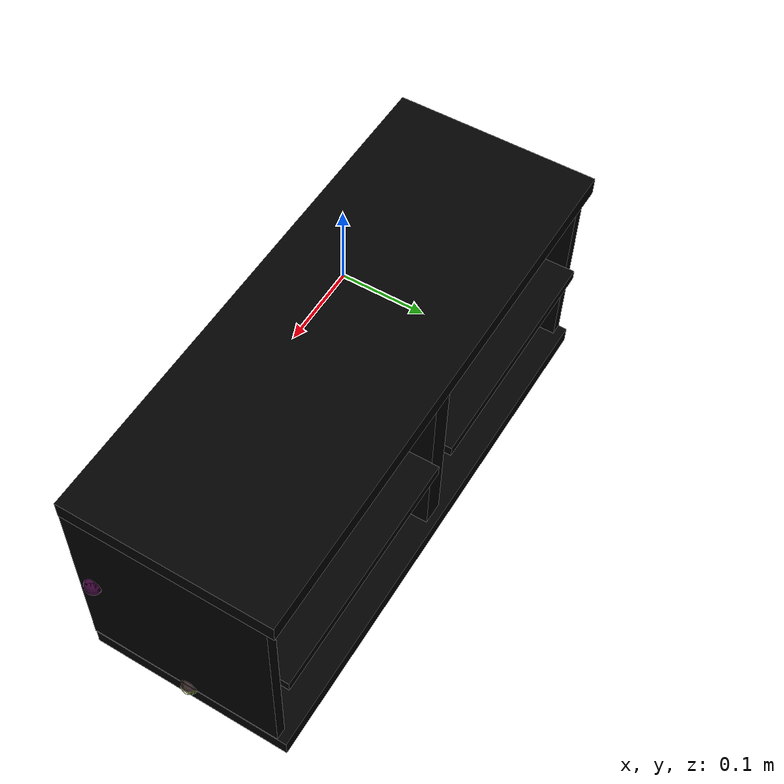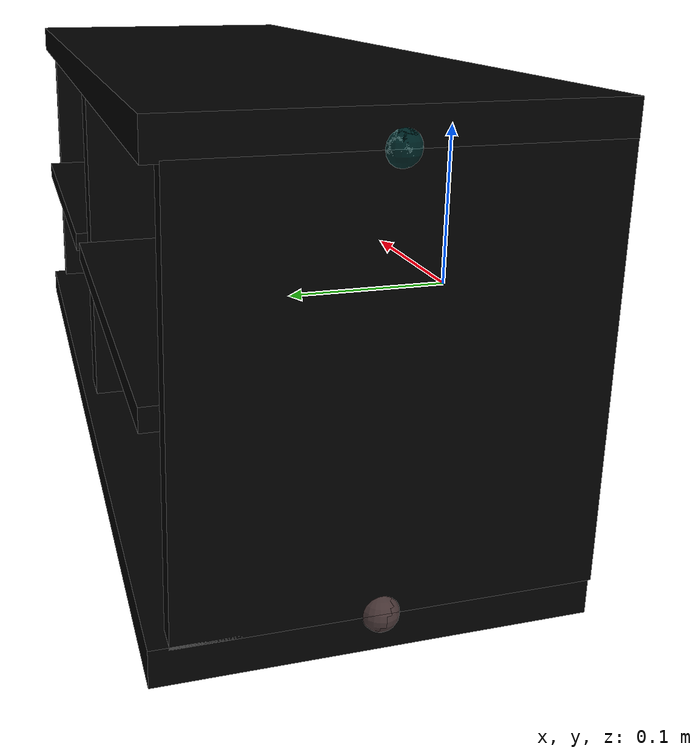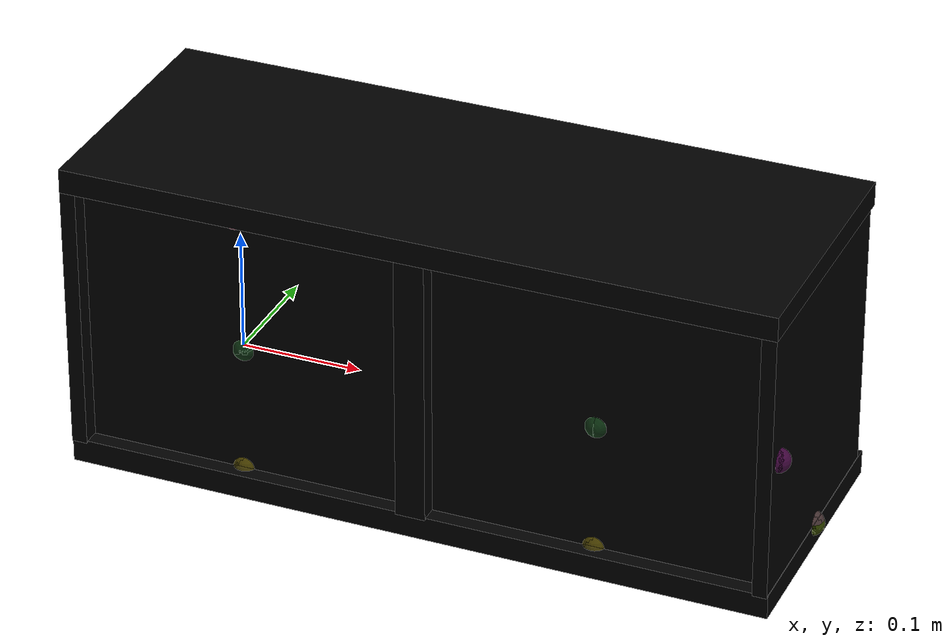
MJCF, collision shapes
<mujoco model="bookcase_besta_0170">
  <custom>
    <numeric data="-0.070591 0.012523 0.00199 0.706958 -0.706958 0.014498 -0.014498" name="0_part0_initpos" />
    <numeric data="-0.080256 -0.258595 0.00632 0.0 -0.999986 0.005202 0.0" name="8_part8_initpos" />
    <numeric data="0.274967 -0.272335 0.00632 0.0 -0.999928 -0.012017 0.0" name="7_part7_initpos" />
    <numeric data="0.259821 0.02173 0.00584 0.707029 -0.010492 0.707029 0.010492" name="6_part6_initpos" />
    <numeric data="-0.404145 0.315825 0.00632 0.706995 -0.012561 -0.706995 -0.012561" name="5_part5_initpos" />
    <numeric data="-0.40188 -0.275617 0.01267 0.5 -0.5 -0.5 -0.5" name="4_part4_initpos" />
    <numeric data="0.078748 0.33359 0.01024 0.999926 -0.0 -0.0 -0.012148" name="3_part3_initpos" />
    <numeric data="0.571399 0.008153 0.01025 -0.0 -0.696823 -0.717243 0.0" name="2_part2_initpos" />
    <numeric data="-0.424892 0.026808 0.00199 0.707105 -0.707105 0.001613 -0.001613" name="1_part1_initpos" />
  </custom>
  <asset>
    <mesh file="bookcase_besta_0170/0.stl" name="part0" scale="0.0005 0.0005 0.0005" />
    <mesh file="bookcase_besta_0170/8.stl" name="part8" scale="0.0005 0.0005 0.0005" />
    <mesh file="bookcase_besta_0170/7.stl" name="part7" scale="0.0005 0.0005 0.0005" />
    <mesh file="bookcase_besta_0170/6.stl" name="part6" scale="0.0005 0.0005 0.0005" />
    <mesh file="bookcase_besta_0170/5.stl" name="part5" scale="0.0005 0.0005 0.0005" />
    <mesh file="bookcase_besta_0170/4.stl" name="part4" scale="0.0005 0.0005 0.0005" />
    <mesh file="bookcase_besta_0170/3.stl" name="part3" scale="0.0005 0.0005 0.0005" />
    <mesh file="bookcase_besta_0170/2.stl" name="part2" scale="0.0005 0.0005 0.0005" />
    <mesh file="bookcase_besta_0170/1.stl" name="part1" scale="0.0005 0.0005 0.0005" />
  </asset>
  <equality>
    <weld active="false" body1="0_part0" body2="2_part2" solimp="1 1 0.5" solref="0.01 0.3" />
    <weld active="false" body1="8_part8" body2="6_part6" solimp="1 1 0.5" solref="0.01 0.3" />
    <weld active="false" body1="8_part8" body2="4_part4" solimp="1 1 0.5" solref="0.01 0.3" />
    <weld active="false" body1="7_part7" body2="4_part4" solimp="1 1 0.5" solref="0.01 0.3" />
    <weld active="false" body1="7_part7" body2="5_part5" solimp="1 1 0.5" solref="0.01 0.3" />
    <weld active="false" body1="6_part6" body2="1_part1" solimp="1 1 0.5" solref="0.01 0.3" />
    <weld active="false" body1="6_part6" body2="3_part3" solimp="1 1 0.5" solref="0.01 0.3" />
    <weld active="false" body1="5_part5" body2="2_part2" solimp="1 1 0.5" solref="0.01 0.3" />
    <weld active="false" body1="5_part5" body2="3_part3" solimp="1 1 0.5" solref="0.01 0.3" />
    <weld active="false" body1="4_part4" body2="2_part2" solimp="1 1 0.5" solref="0.01 0.3" />
    <weld active="false" body1="4_part4" body2="3_part3" solimp="1 1 0.5" solref="0.01 0.3" />
    <weld active="false" body1="2_part2" body2="1_part1" solimp="1 1 0.5" solref="0.01 0.3" />
  </equality>
  <worldbody>
    <body name="0_part0" pos="2e-10 5e-11 0.0" quat="1 0 0 0">
      <geom conaffinity="0" contype="0" density="0" mesh="part0" name="0_part0_mesh" pos="0.0 0.0 0.0" rgba="0.82 0.71 0.55 1" type="mesh" />
      <site name="0_part0_horizontal_radius_site" pos="2e-10 5e-11 0.0" quat="1 0 0 0" rgba="0 0 0 0" size="0.01" />
      <site name="0_part0_top_site" pos="1.5e-10 0.0 0.11430589295" quat="1 0 0 0" rgba="0 0 0 0" size="0.01" />
      <site name="0_part0_bottom_site" pos="1.5e-10 0.0 -0.11430589295" quat="1 0 0 0" rgba="0 0 0 0" size="0.01" />
      <site name="0_part0_corner_site8" pos="-0.13906500245 0.00202235395 0.11430589295" quat="1 0 0 0" rgba="0 0 0 0" size="0.01" />
      <site name="0_part0_corner_site7" pos="0.1390650028 0.00202235395 0.11430589295" quat="1 0 0 0" rgba="0 0 0 0" size="0.01" />
      <site name="0_part0_corner_site6" pos="0.1390650028 -0.0020223539 0.11430589295" quat="1 0 0 0" rgba="0 0 0 0" size="0.01" />
      <site name="0_part0_corner_site5" pos="-0.13906500245 -0.0020223539 0.11430589295" quat="1 0 0 0" rgba="0 0 0 0" size="0.01" />
      <site name="0_part0_corner_site4" pos="-0.13906500245 0.00202235395 -0.11430589295" quat="1 0 0 0" rgba="0 0 0 0" size="0.01" />
      <site name="0_part0_corner_site3" pos="0.1390650028 0.00202235395 -0.11430589295" quat="1 0 0 0" rgba="0 0 0 0" size="0.01" />
      <site name="0_part0_corner_site2" pos="0.1390650028 -0.0020223539 -0.11430589295" quat="1 0 0 0" rgba="0 0 0 0" size="0.01" />
      <site name="0_part0_corner_site1" pos="-0.13906500245 -0.0020223539 -0.11430589295" quat="1 0 0 0" rgba="0 0 0 0" size="0.01" />
      <site name="0_part0-2_part2,0,180,conn_site" pos="-0.0046500000000000005 0.00039999995 0.1142474" quat="1 0 0 0" rgba="0.9019 0.0980 0.2941 0.3" size="0.01" />
      <site name="back-shelf,0,180,conn_site1" pos="0.00017 0.00184 -0.00397" quat="0.7071067 0.7071068 0 0" rgba="0.2352 0.7058 0.2941 0.3" size="0.01" />
      <site name="back-floor,0,conn_site1" pos="-0.002 0.0014 -0.1137" quat="1 0 0 0" rgba="1.0 0.8823 0.0980 0.3" size="0.01" />
      <geom density="50" name="noviz_collision_0_part0_0" pos="0 0 0" quat="1 0 0 0" rgba="0 0 0 0" size="0.13906 0.00202 0.11431" solref="0.001 1" type="box" />
    </body>
    <body name="8_part8" pos="0.29879042535 0.1074300703 -0.0030907227000000004" quat="1 0 0 0">
      <geom conaffinity="0" contype="0" density="0" mesh="part8" name="8_part8_mesh" pos="0.0 0.0 0.0" rgba="0.82 0.71 0.55 1" type="mesh" />
      <site name="8_part8_horizontal_radius_site" pos="0.0 0.0 0.0" quat="1 0 0 0" rgba="0 0 0 0" size="0.01" />
      <site name="8_part8_top_site" pos="0.0 0.0 0.00635" quat="1 0 0 0" rgba="0 0 0 0" size="0.01" />
      <site name="8_part8_bottom_site" pos="0.0 0.0 -0.00635" quat="1 0 0 0" rgba="0 0 0 0" size="0.01" />
      <site name="8_part8_corner_site8" pos="-0.136525 0.10540771635 0.00635" quat="1 0 0 0" rgba="0 0 0 0" size="0.01" />
      <site name="8_part8_corner_site7" pos="0.136525 0.10540771635 0.00635" quat="1 0 0 0" rgba="0 0 0 0" size="0.01" />
      <site name="8_part8_corner_site6" pos="0.136525 -0.10540771635 0.00635" quat="1 0 0 0" rgba="0 0 0 0" size="0.01" />
      <site name="8_part8_corner_site5" pos="-0.136525 -0.10540771635 0.00635" quat="1 0 0 0" rgba="0 0 0 0" size="0.01" />
      <site name="8_part8_corner_site4" pos="-0.136525 0.10540771635 -0.00635" quat="1 0 0 0" rgba="0 0 0 0" size="0.01" />
      <site name="8_part8_corner_site3" pos="0.136525 0.10540771635 -0.00635" quat="1 0 0 0" rgba="0 0 0 0" size="0.01" />
      <site name="8_part8_corner_site2" pos="0.136525 -0.10540771635 -0.00635" quat="1 0 0 0" rgba="0 0 0 0" size="0.01" />
      <site name="8_part8_corner_site1" pos="-0.136525 -0.10540771635 -0.00635" quat="1 0 0 0" rgba="0 0 0 0" size="0.01" />
      <site name="8_part8-6_part6,0,180,conn_site" pos="0.13620955 -0.004821090500000001 -0.001259277" quat="1 0 0 0" rgba="0.2627 0.3882 0.8470 0.3" size="0.01" />
      <site name="8_part8-4_part4,0,180,conn_site" pos="-0.13739045 -0.004821090500000001 -0.0030592774999999997" quat="1 0 0 0" rgba="0.9607 0.5098 0.1921 0.3" size="0.01" />
      <site name="shelf-back,0,180,conn_site2" pos="0.00034 -0.10559 -0.00088" quat="0.7071067 0.7071068 0 0" rgba="0.2352 0.7058 0.2941 0.3" size="0.01" />
      <geom density="50" name="noviz_collision_8_part8_0" pos="0 0 0" quat="1 0 0 0" rgba="0 0 0 0" size="0.13653 0.10541 0.00635" solref="0.001 1" type="box" />
    </body>
    <body name="7_part7" pos="0.00034042535 0.1074300703 -0.0030907227000000004" quat="1 0 0 0">
      <geom conaffinity="0" contype="0" density="0" mesh="part7" name="7_part7_mesh" pos="0.0 0.0 0.0" rgba="0.82 0.71 0.55 1" type="mesh" />
      <site name="7_part7_horizontal_radius_site" pos="0.0 0.0 0.0" quat="1 0 0 0" rgba="0 0 0 0" size="0.01" />
      <site name="7_part7_top_site" pos="0.0 0.0 0.00635" quat="1 0 0 0" rgba="0 0 0 0" size="0.01" />
      <site name="7_part7_bottom_site" pos="0.0 0.0 -0.00635" quat="1 0 0 0" rgba="0 0 0 0" size="0.01" />
      <site name="7_part7_corner_site8" pos="-0.136525 0.10540771635 0.00635" quat="1 0 0 0" rgba="0 0 0 0" size="0.01" />
      <site name="7_part7_corner_site7" pos="0.136525 0.10540771635 0.00635" quat="1 0 0 0" rgba="0 0 0 0" size="0.01" />
      <site name="7_part7_corner_site6" pos="0.136525 -0.10540771635 0.00635" quat="1 0 0 0" rgba="0 0 0 0" size="0.01" />
      <site name="7_part7_corner_site5" pos="-0.136525 -0.10540771635 0.00635" quat="1 0 0 0" rgba="0 0 0 0" size="0.01" />
      <site name="7_part7_corner_site4" pos="-0.136525 0.10540771635 -0.00635" quat="1 0 0 0" rgba="0 0 0 0" size="0.01" />
      <site name="7_part7_corner_site3" pos="0.136525 0.10540771635 -0.00635" quat="1 0 0 0" rgba="0 0 0 0" size="0.01" />
      <site name="7_part7_corner_site2" pos="0.136525 -0.10540771635 -0.00635" quat="1 0 0 0" rgba="0 0 0 0" size="0.01" />
      <site name="7_part7_corner_site1" pos="-0.136525 -0.10540771635 -0.00635" quat="1 0 0 0" rgba="0 0 0 0" size="0.01" />
      <site name="7_part7-4_part4,0,180,conn_site" pos="0.13615960000000002 -0.004821090500000001 -0.001109277" quat="1 0 0 0" rgba="0.5686 0.1176 0.7058 0.3" size="0.01" />
      <site name="7_part7-5_part5,0,180,conn_site" pos="-0.1360404 -0.004821090500000001 -0.0024592775" quat="1 0 0 0" rgba="0.2745 0.9411 0.9411 0.3" size="0.01" />
      <site name="shelf-back,0,180,conn_site1" pos="-0.00017 -0.10559 -0.00088" quat="0.7071067 0.7071068 0 0" rgba="0.2352 0.7058 0.2941 0.3" size="0.01" />
      <geom density="50" name="noviz_collision_7_part7_0" pos="0 0 0" quat="1 0 0 0" rgba="0 0 0 0" size="0.13653 0.10541 0.00635" solref="0.001 1" type="box" />
    </body>
    <body name="6_part6" pos="0.44166542535000003 0.09778788215 0.00064371055" quat="1 0 0 0">
      <geom conaffinity="0" contype="0" density="0" mesh="part6" name="6_part6_mesh" pos="0.0 0.0 0.0" rgba="0.82 0.71 0.55 1" type="mesh" />
      <site name="6_part6_horizontal_radius_site" pos="0.0 6e-10 0.0" quat="1 0 0 0" rgba="0 0 0 0" size="0.01" />
      <site name="6_part6_top_site" pos="0.0 6e-10 0.11504990385000001" quat="1 0 0 0" rgba="0 0 0 0" size="0.01" />
      <site name="6_part6_bottom_site" pos="0.0 6e-10 -0.11504990385000001" quat="1 0 0 0" rgba="0 0 0 0" size="0.01" />
      <site name="6_part6_corner_site8" pos="-0.00635 0.11504990505000001 0.11504990385000001" quat="1 0 0 0" rgba="0 0 0 0" size="0.01" />
      <site name="6_part6_corner_site7" pos="0.00635 0.11504990505000001 0.11504990385000001" quat="1 0 0 0" rgba="0 0 0 0" size="0.01" />
      <site name="6_part6_corner_site6" pos="0.00635 -0.11504990385000001 0.11504990385000001" quat="1 0 0 0" rgba="0 0 0 0" size="0.01" />
      <site name="6_part6_corner_site5" pos="-0.00635 -0.11504990385000001 0.11504990385000001" quat="1 0 0 0" rgba="0 0 0 0" size="0.01" />
      <site name="6_part6_corner_site4" pos="-0.00635 0.11504990505000001 -0.11504990385000001" quat="1 0 0 0" rgba="0 0 0 0" size="0.01" />
      <site name="6_part6_corner_site3" pos="0.00635 0.11504990505000001 -0.11504990385000001" quat="1 0 0 0" rgba="0 0 0 0" size="0.01" />
      <site name="6_part6_corner_site2" pos="0.00635 -0.11504990385000001 -0.11504990385000001" quat="1 0 0 0" rgba="0 0 0 0" size="0.01" />
      <site name="6_part6_corner_site1" pos="-0.00635 -0.11504990385000001 -0.11504990385000001" quat="1 0 0 0" rgba="0 0 0 0" size="0.01" />
      <site name="6_part6-1_part1,0,180,conn_site" pos="0.004984558 -0.0971379 5.014855e-05" quat="1 0 0 0" rgba="0.9411 0.1960 0.9019 0.3" size="0.01" />
      <site name="6_part6-8_part8,0,180,conn_site" pos="-0.006665435000000001 0.0048210985 -0.0049937105" quat="1 0 0 0" rgba="0.2627 0.3882 0.8470 0.3" size="0.01" />
      <site name="6_part6-3_part3,0,180,conn_site" pos="0.003584564 0.00040753935 -0.1150437" quat="1 0 0 0" rgba="0.7372 0.9647 0.0470 0.3" size="0.01" />
      <site name="wall-floor,0,180,conn_site2" pos="0.00331 0.00041 -0.1143" quat="1 0 0 0" rgba="0.9803 0.7450 0.7450 0.3" size="0.01" />
      <geom density="50" name="noviz_collision_6_part6_0" pos="-0.00024 -0.00491 -4E-05" quat="1 0 0 0" rgba="0 0 0 0" size="0.00611 0.11014 0.11501" solref="0.001 1" type="box" />
    </body>
    <body name="5_part5" pos="-0.1425345768 0.09778788215 0.00064371055" quat="1 0 0 0">
      <geom conaffinity="0" contype="0" density="0" mesh="part5" name="5_part5_mesh" pos="0.0 0.0 0.0" rgba="0.82 0.71 0.55 1" type="mesh" />
      <site name="5_part5_horizontal_radius_site" pos="0.0 6e-10 0.0" quat="1 0 0 0" rgba="0 0 0 0" size="0.01" />
      <site name="5_part5_top_site" pos="0.0 6e-10 0.11504990385000001" quat="1 0 0 0" rgba="0 0 0 0" size="0.01" />
      <site name="5_part5_bottom_site" pos="0.0 6e-10 -0.11504990385000001" quat="1 0 0 0" rgba="0 0 0 0" size="0.01" />
      <site name="5_part5_corner_site8" pos="-0.0063500061 0.11504990505000001 0.11504990385000001" quat="1 0 0 0" rgba="0 0 0 0" size="0.01" />
      <site name="5_part5_corner_site7" pos="0.0063500061 0.11504990505000001 0.11504990385000001" quat="1 0 0 0" rgba="0 0 0 0" size="0.01" />
      <site name="5_part5_corner_site6" pos="0.0063500061 -0.11504990385000001 0.11504990385000001" quat="1 0 0 0" rgba="0 0 0 0" size="0.01" />
      <site name="5_part5_corner_site5" pos="-0.0063500061 -0.11504990385000001 0.11504990385000001" quat="1 0 0 0" rgba="0 0 0 0" size="0.01" />
      <site name="5_part5_corner_site4" pos="-0.0063500061 0.11504990505000001 -0.11504990385000001" quat="1 0 0 0" rgba="0 0 0 0" size="0.01" />
      <site name="5_part5_corner_site3" pos="0.0063500061 0.11504990505000001 -0.11504990385000001" quat="1 0 0 0" rgba="0 0 0 0" size="0.01" />
      <site name="5_part5_corner_site2" pos="0.0063500061 -0.11504990385000001 -0.11504990385000001" quat="1 0 0 0" rgba="0 0 0 0" size="0.01" />
      <site name="5_part5_corner_site1" pos="-0.0063500061 -0.11504990385000001 -0.11504990385000001" quat="1 0 0 0" rgba="0 0 0 0" size="0.01" />
      <site name="5_part5-2_part2,0,180,conn_site" pos="-0.0019654235 -0.00040753175 0.11535630000000001" quat="1 0 0 0" rgba="0.0 0.5019 0.5019 0.3" size="0.01" />
      <site name="5_part5-7_part7,0,180,conn_site" pos="0.00683458 0.0048210985 -0.006193710000000001" quat="1 0 0 0" rgba="0.2745 0.9411 0.9411 0.3" size="0.01" />
      <site name="5_part5-3_part3,0,180,conn_site" pos="-0.0026154175 0.00040753935 -0.11429755" quat="1 0 0 0" rgba="0.9019 0.7450 1.0 0.3" size="0.01" />
      <site name="wall-floor,0,180,conn_site1" pos="-0.00375 0.00041 -0.1143" quat="1 0 0 0" rgba="0.9803 0.7450 0.7450 0.3" size="0.01" />
      <geom density="50" name="noviz_collision_5_part5_0" pos="0.00024 -0.00491 -4E-05" quat="1 0 0 0" rgba="0 0 0 0" size="0.00659 0.11014 0.11501" solref="0.001 1" type="box" />
    </body>
    <body name="4_part4" pos="0.1495654258 0.09778788215 0.00064371055" quat="1 0 0 0">
      <geom conaffinity="0" contype="0" density="0" mesh="part4" name="4_part4_mesh" pos="0.0 0.0 0.0" rgba="0.82 0.71 0.55 1" type="mesh" />
      <site name="4_part4_horizontal_radius_site" pos="0.0 6e-10 0.0" quat="1 0 0 0" rgba="0 0 0 0" size="0.01" />
      <site name="4_part4_top_site" pos="0.0 6e-10 0.11504990385000001" quat="1 0 0 0" rgba="0 0 0 0" size="0.01" />
      <site name="4_part4_bottom_site" pos="0.0 6e-10 -0.11504990385000001" quat="1 0 0 0" rgba="0 0 0 0" size="0.01" />
      <site name="4_part4_corner_site8" pos="-0.012700000749999999 0.11504990505000001 0.11504990385000001" quat="1 0 0 0" rgba="0 0 0 0" size="0.01" />
      <site name="4_part4_corner_site7" pos="0.012700000749999999 0.11504990505000001 0.11504990385000001" quat="1 0 0 0" rgba="0 0 0 0" size="0.01" />
      <site name="4_part4_corner_site6" pos="0.012700000749999999 -0.11504990385000001 0.11504990385000001" quat="1 0 0 0" rgba="0 0 0 0" size="0.01" />
      <site name="4_part4_corner_site5" pos="-0.012700000749999999 -0.11504990385000001 0.11504990385000001" quat="1 0 0 0" rgba="0 0 0 0" size="0.01" />
      <site name="4_part4_corner_site4" pos="-0.012700000749999999 0.11504990505000001 -0.11504990385000001" quat="1 0 0 0" rgba="0 0 0 0" size="0.01" />
      <site name="4_part4_corner_site3" pos="0.012700000749999999 0.11504990505000001 -0.11504990385000001" quat="1 0 0 0" rgba="0 0 0 0" size="0.01" />
      <site name="4_part4_corner_site2" pos="0.012700000749999999 -0.11504990385000001 -0.11504990385000001" quat="1 0 0 0" rgba="0 0 0 0" size="0.01" />
      <site name="4_part4_corner_site1" pos="-0.012700000749999999 -0.11504990385000001 -0.11504990385000001" quat="1 0 0 0" rgba="0 0 0 0" size="0.01" />
      <site name="4_part4-2_part2,0,180,conn_site" pos="0.0 -0.00040753175 0.11429755" quat="1 0 0 0" rgba="0.6039 0.3882 0.1411 0.3" size="0.01" />
      <site name="4_part4-8_part8,0,180,conn_site" pos="0.011834565 0.0048210985 -0.00679371" quat="1 0 0 0" rgba="0.9607 0.5098 0.1921 0.3" size="0.01" />
      <site name="4_part4-3_part3,0,180,conn_site" pos="0.0 0.00040753935 -0.11394370000000001" quat="1 0 0 0" rgba="1.0 0.9803 0.7843 0.3" size="0.01" />
      <site name="4_part4-7_part7,0,180,conn_site" pos="-0.01306543 0.0048210985 -0.0048437105" quat="1 0 0 0" rgba="0.5686 0.1176 0.7058 0.3" size="0.01" />
      <site name="middle-top,0,180,conn_site1" pos="0 -0.00041 0.11391" quat="1 0 0 0" rgba="0.5019 0.0 0.0 0.3" size="0.01" />
      <site name="middle-bottom,0,180,conn_site1" pos="0 0.00041 -0.1104" quat="1 0 0 0" rgba="0.6666 1.0 0.7647 0.3" size="0.01" />
      <geom density="50" name="noviz_collision_4_part4_0" pos="0 -0.00414 -4E-05" quat="1 0 0 0" rgba="0 0 0 0" size="0.0127 0.11091 0.11501" solref="0.001 1" type="box" />
    </body>
    <body name="3_part3" pos="0.14956540955 0.09860296060000001 -0.12317861005000001" quat="1 0 0 0">
      <geom conaffinity="0" contype="0" density="0" mesh="part3" name="3_part3_mesh" pos="0.0 0.0 0.0" rgba="0.82 0.71 0.55 1" type="mesh" />
      <site name="3_part3_horizontal_radius_site" pos="3.6e-09 1e-10 0.0" quat="1 0 0 0" rgba="0 0 0 0" size="0.01" />
      <site name="3_part3_top_site" pos="3.55e-09 1e-10 0.010277169300000001" quat="1 0 0 0" rgba="0 0 0 0" size="0.01" />
      <site name="3_part3_bottom_site" pos="3.55e-09 1e-10 -0.010277169300000001" quat="1 0 0 0" rgba="0 0 0 0" size="0.01" />
      <site name="3_part3_corner_site8" pos="-0.2984500122 0.11436022205 0.010277169300000001" quat="1 0 0 0" rgba="0 0 0 0" size="0.01" />
      <site name="3_part3_corner_site7" pos="0.29845001935 0.11436022205 0.010277169300000001" quat="1 0 0 0" rgba="0 0 0 0" size="0.01" />
      <site name="3_part3_corner_site6" pos="0.29845001935 -0.11436022185 0.010277169300000001" quat="1 0 0 0" rgba="0 0 0 0" size="0.01" />
      <site name="3_part3_corner_site5" pos="-0.2984500122 -0.11436022185 0.010277169300000001" quat="1 0 0 0" rgba="0 0 0 0" size="0.01" />
      <site name="3_part3_corner_site4" pos="-0.2984500122 0.11436022205 -0.010277169300000001" quat="1 0 0 0" rgba="0 0 0 0" size="0.01" />
      <site name="3_part3_corner_site3" pos="0.29845001935 0.11436022205 -0.010277169300000001" quat="1 0 0 0" rgba="0 0 0 0" size="0.01" />
      <site name="3_part3_corner_site2" pos="0.29845001935 -0.11436022185 -0.010277169300000001" quat="1 0 0 0" rgba="0 0 0 0" size="0.01" />
      <site name="3_part3_corner_site1" pos="-0.2984500122 -0.11436022185 -0.010277169300000001" quat="1 0 0 0" rgba="0 0 0 0" size="0.01" />
      <site name="3_part3-6_part6,0,180,conn_site" pos="0.29568455 -0.00040753935 0.008778610000000001" quat="1 0 0 0" rgba="0.7372 0.9647 0.0470 0.3" size="0.01" />
      <site name="3_part3-4_part4,0,180,conn_site" pos="1.525879e-08 -0.00040753935 0.00987861" quat="1 0 0 0" rgba="1.0 0.9803 0.7843 0.3" size="0.01" />
      <site name="3_part3-5_part5,0,180,conn_site" pos="-0.2947154 -0.00040753935 0.00952479" quat="1 0 0 0" rgba="0.9019 0.7450 1.0 0.3" size="0.01" />
      <site name="bottom-middle,0,180,conn_site1" pos="0 -0.00041 0.01342" quat="1 0 0 0" rgba="0.6666 1.0 0.7647 0.3" size="0.01" />
      <site name="floor-wall,0,180,conn_site2" pos="0.29541 -0.00041 0.00952" quat="1 0 0 0" rgba="0.9803 0.7450 0.7450 0.3" size="0.01" />
      <site name="floor-wall,0,180,conn_site1" pos="-0.29585 -0.00041 0.00952" quat="1 0 0 0" rgba="0.9803 0.7450 0.7450 0.3" size="0.01" />
      <site name="floor-back,0,conn_site2" pos="0.14943 -0.0972 0.00948" quat="1 0 0 0" rgba="1.0 0.8823 0.0980 0.3" size="0.01" />
      <site name="floor-back,0,conn_site1" pos="-0.15157 -0.0972 0.00948" quat="1 0 0 0" rgba="1.0 0.8823 0.0980 0.3" size="0.01" />
      <geom density="50" name="noviz_collision_3_part3_0" pos="0 0.00012 -5E-05" quat="1 0 0 0" rgba="0 0 0 0" size="0.29845 0.11448 0.01022" solref="0.001 1" type="box" />
    </body>
    <body name="2_part2" pos="0.14956542535 0.09697281355 0.12446602470000001" quat="1 0 0 0">
      <geom conaffinity="0" contype="0" density="0" mesh="part2" name="2_part2_mesh" pos="0.0 0.0 0.0" rgba="0.82 0.71 0.55 1" type="mesh" />
      <site name="2_part2_horizontal_radius_site" pos="0.0 0.0 -0.0" quat="1 0 0 0" rgba="0 0 0 0" size="0.01" />
      <site name="2_part2_top_site" pos="0.0 0.0 0.010277169300000001" quat="1 0 0 0" rgba="0 0 0 0" size="0.01" />
      <site name="2_part2_bottom_site" pos="0.0 0.0 -0.010277169300000001" quat="1 0 0 0" rgba="0 0 0 0" size="0.01" />
      <site name="2_part2_corner_site8" pos="-0.29845 0.1143602217 0.010277169300000001" quat="1 0 0 0" rgba="0 0 0 0" size="0.01" />
      <site name="2_part2_corner_site7" pos="0.29845 0.1143602217 0.010277169300000001" quat="1 0 0 0" rgba="0 0 0 0" size="0.01" />
      <site name="2_part2_corner_site6" pos="0.29845 -0.1143602217 0.010277169300000001" quat="1 0 0 0" rgba="0 0 0 0" size="0.01" />
      <site name="2_part2_corner_site5" pos="-0.29845 -0.1143602217 0.010277169300000001" quat="1 0 0 0" rgba="0 0 0 0" size="0.01" />
      <site name="2_part2_corner_site4" pos="-0.29845 0.1143602217 -0.010277169300000001" quat="1 0 0 0" rgba="0 0 0 0" size="0.01" />
      <site name="2_part2_corner_site3" pos="0.29845 0.1143602217 -0.010277169300000001" quat="1 0 0 0" rgba="0 0 0 0" size="0.01" />
      <site name="2_part2_corner_site2" pos="0.29845 -0.1143602217 -0.010277169300000001" quat="1 0 0 0" rgba="0 0 0 0" size="0.01" />
      <site name="2_part2_corner_site1" pos="-0.29845 -0.1143602217 -0.010277169300000001" quat="1 0 0 0" rgba="0 0 0 0" size="0.01" />
      <site name="2_part2-1_part1,0,180,conn_site" pos="0.14693455 -0.0914728 -0.010218650000000001" quat="1 0 0 0" rgba="0.5019 0.5019 0.0 0.3" size="0.01" />
      <site name="2_part2-0_part0,0,180,conn_site" pos="-0.1542154 -0.0965728 -0.010218650000000001" quat="1 0 0 0" rgba="0.9019 0.0980 0.2941 0.3" size="0.01" />
      <site name="2_part2-4_part4,0,180,conn_site" pos="0.0 0.00040753175 -0.00952479" quat="1 0 0 0" rgba="0.6039 0.3882 0.1411 0.3" size="0.01" />
      <site name="2_part2-5_part5,0,180,conn_site" pos="-0.29406545 0.00040753175 -0.008466025" quat="1 0 0 0" rgba="0.0 0.5019 0.5019 0.3" size="0.01" />
      <site name="top-middle,0,180,conn_site1" pos="0 0.00041 -0.00992" quat="1 0 0 0" rgba="0.5019 0.0 0.0 0.3" size="0.01" />
      <geom density="50" name="noviz_collision_2_part2_0" pos="0 0 0" quat="1 0 0 0" rgba="0 0 0 0" size="0.29845 0.11436 0.01028" solref="0.001 1" type="box" />
    </body>
    <body name="1_part1" pos="0.29947947655 5e-11 0.0" quat="1 0 0 0">
      <geom conaffinity="0" contype="0" density="0" mesh="part1" name="1_part1_mesh" pos="0.0 0.0 0.0" rgba="0.82 0.71 0.55 1" type="mesh" />
      <site name="1_part1_horizontal_radius_site" pos="0.0 5e-11 0.0" quat="1 0 0 0" rgba="0 0 0 0" size="0.01" />
      <site name="1_part1_top_site" pos="0.0 0.0 0.11430589295" quat="1 0 0 0" rgba="0 0 0 0" size="0.01" />
      <site name="1_part1_bottom_site" pos="0.0 0.0 -0.11430589295" quat="1 0 0 0" rgba="0 0 0 0" size="0.01" />
      <site name="1_part1_corner_site8" pos="-0.1390650177 0.00202235395 0.11430589295" quat="1 0 0 0" rgba="0 0 0 0" size="0.01" />
      <site name="1_part1_corner_site7" pos="0.1390650177 0.00202235395 0.11430589295" quat="1 0 0 0" rgba="0 0 0 0" size="0.01" />
      <site name="1_part1_corner_site6" pos="0.1390650177 -0.0020223539 0.11430589295" quat="1 0 0 0" rgba="0 0 0 0" size="0.01" />
      <site name="1_part1_corner_site5" pos="-0.1390650177 -0.0020223539 0.11430589295" quat="1 0 0 0" rgba="0 0 0 0" size="0.01" />
      <site name="1_part1_corner_site4" pos="-0.1390650177 0.00202235395 -0.11430589295" quat="1 0 0 0" rgba="0 0 0 0" size="0.01" />
      <site name="1_part1_corner_site3" pos="0.1390650177 0.00202235395 -0.11430589295" quat="1 0 0 0" rgba="0 0 0 0" size="0.01" />
      <site name="1_part1_corner_site2" pos="0.1390650177 -0.0020223539 -0.11430589295" quat="1 0 0 0" rgba="0 0 0 0" size="0.01" />
      <site name="1_part1_corner_site1" pos="-0.1390650177 -0.0020223539 -0.11430589295" quat="1 0 0 0" rgba="0 0 0 0" size="0.01" />
      <site name="1_part1-2_part2,0,180,conn_site" pos="-0.0029794615000000003 0.0055 0.1142474" quat="1 0 0 0" rgba="0.5019 0.5019 0.0 0.3" size="0.01" />
      <site name="1_part1-6_part6,0,180,conn_site" pos="0.14717054999999998 0.0006500000000000001 0.000693859" quat="1 0 0 0" rgba="0.9411 0.1960 0.9019 0.3" size="0.01" />
      <site name="back-shelf,0,180,conn_site2" pos="-0.00034 0.00184 -0.00397" quat="0.7071067 0.7071068 0 0" rgba="0.2352 0.7058 0.2941 0.3" size="0.01" />
      <site name="back-floor,0,conn_site2" pos="-0.00048 0.0014 -0.1137" quat="1 0 0 0" rgba="1.0 0.8823 0.0980 0.3" size="0.01" />
      <geom density="50" name="noviz_collision_1_part1_0" pos="0 0 0" quat="1 0 0 0" rgba="0 0 0 0" size="0.13907 0.00202 0.11431" solref="0.001 1" type="box" />
    </body>
  </worldbody>
<actuator /><sensor /><contact /><default /></mujoco>
